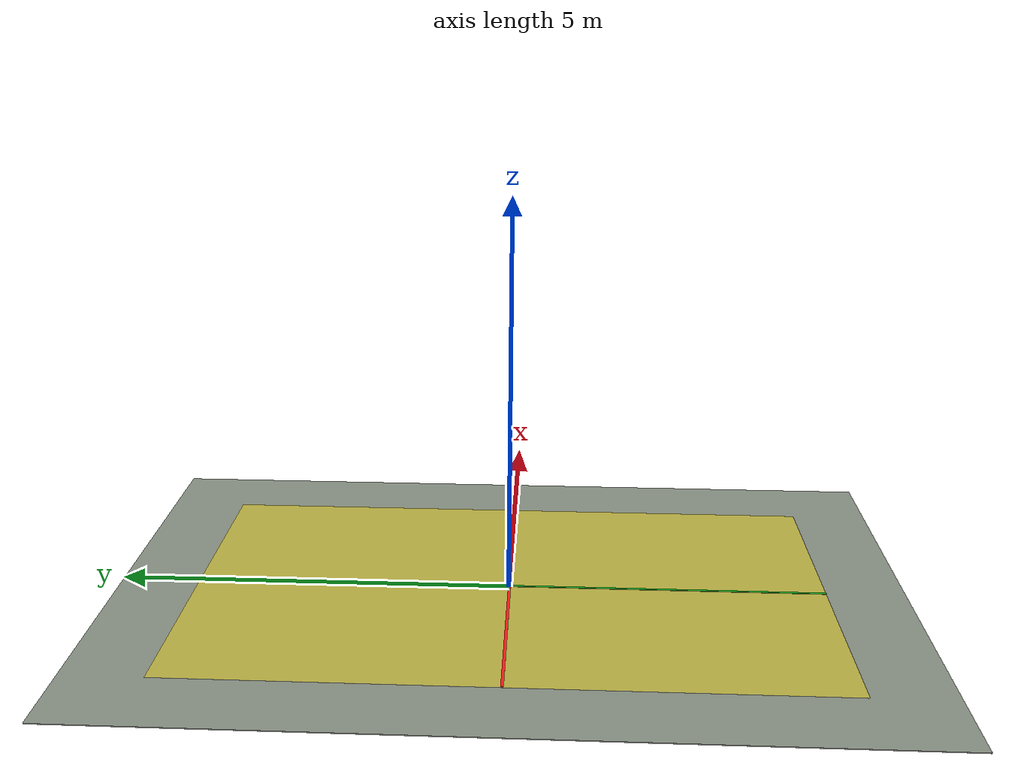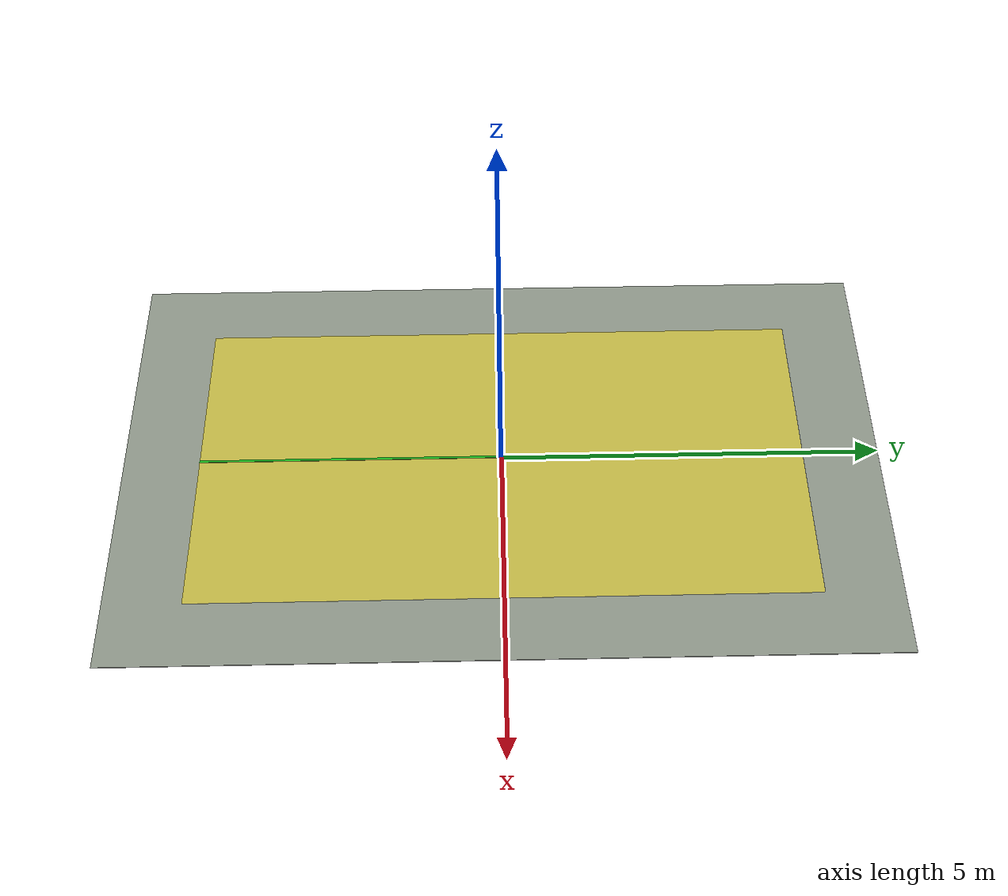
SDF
<?xml version="1.0"?>
<sdf version="1.9">
  <model name="recognition_field">
    <static>true</static>
    <link name="link">
      <collision name="ground_collision">
        <pose>0 0 -0.011 0 0 0</pose>
        <geometry><box><size>12 14 0.02</size></box></geometry>
        <surface>
          <contact><ode><max_vel>10.0</max_vel><min_depth>0.001</min_depth></ode></contact>
          <friction><ode><mu>1.0</mu><mu2>1.0</mu2></ode></friction>
        </surface>
      </collision>
      <visual name="ground">
        <pose>0 0 -0.006 0 0 0</pose>
        <geometry><box><size>7 10 0.01</size></box></geometry>
        <material><ambient>0.54 0.57 0.52 1</ambient><diffuse>0.54 0.57 0.52 1</diffuse></material>
      </visual>
      <visual name="recognition_area">
        <pose>0 0 0.002 0 0 0</pose>
        <geometry><box><size>5 8 0.004</size></box></geometry>
        <material><ambient>0.95 0.85 0.10 0.55</ambient><diffuse>0.95 0.85 0.10 0.55</diffuse></material>
      </visual>
      <visual name="x_axis">
        <pose>0 0 0.012 0 0 0</pose>
        <geometry><box><size>5 0.035 0.006</size></box></geometry>
        <material><ambient>1 0.1 0.1 1</ambient><diffuse>1 0.1 0.1 1</diffuse></material>
      </visual>
      <visual name="y_axis">
        <pose>0 0 0.014 0 0 0</pose>
        <geometry><box><size>0.035 8 0.006</size></box></geometry>
        <material><ambient>0.1 0.7 0.1 1</ambient><diffuse>0.1 0.7 0.1 1</diffuse></material>
      </visual>
    </link>
  </model>
</sdf>
